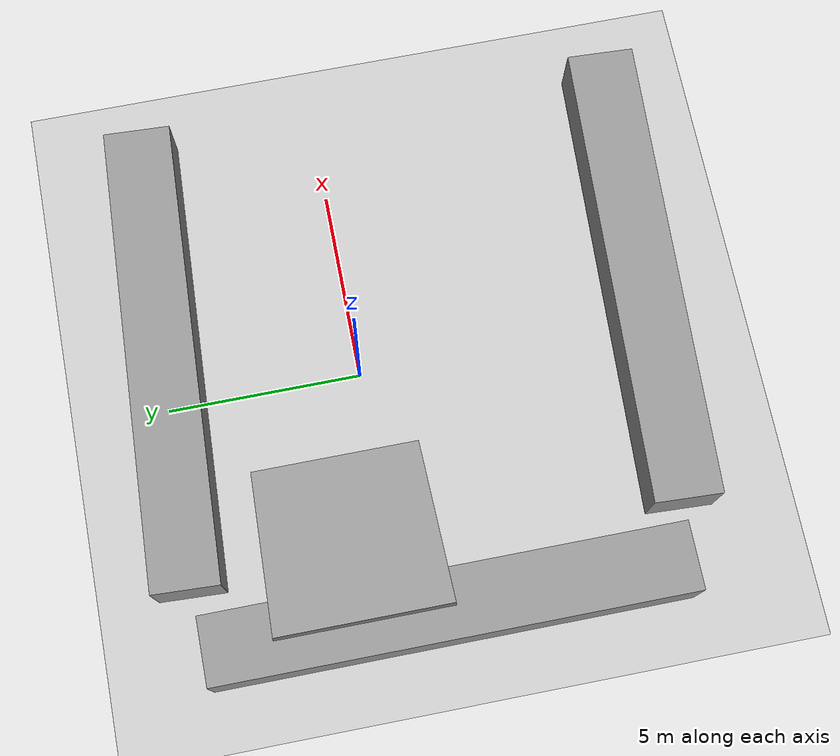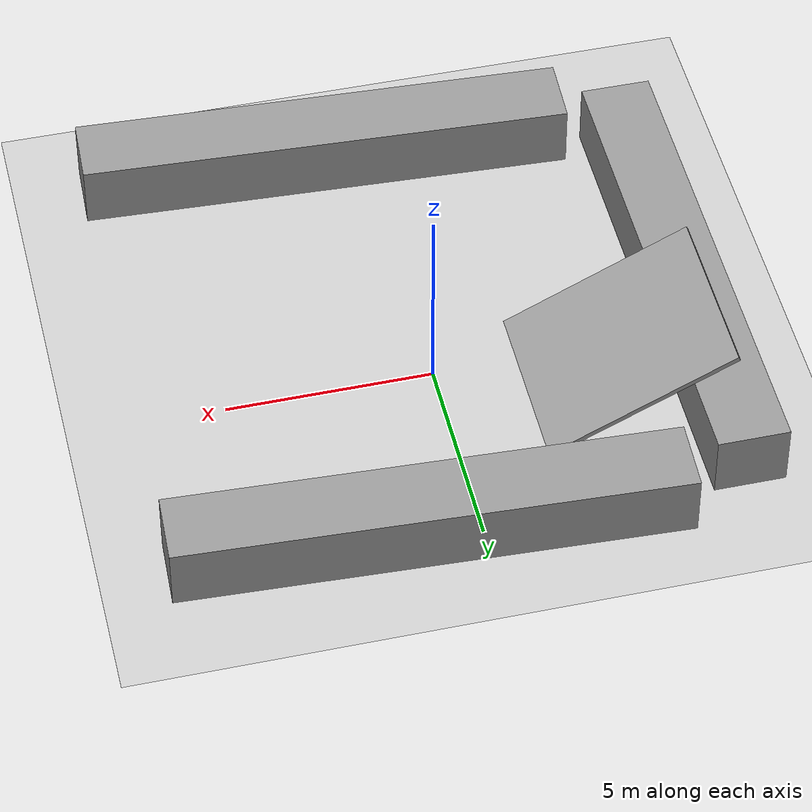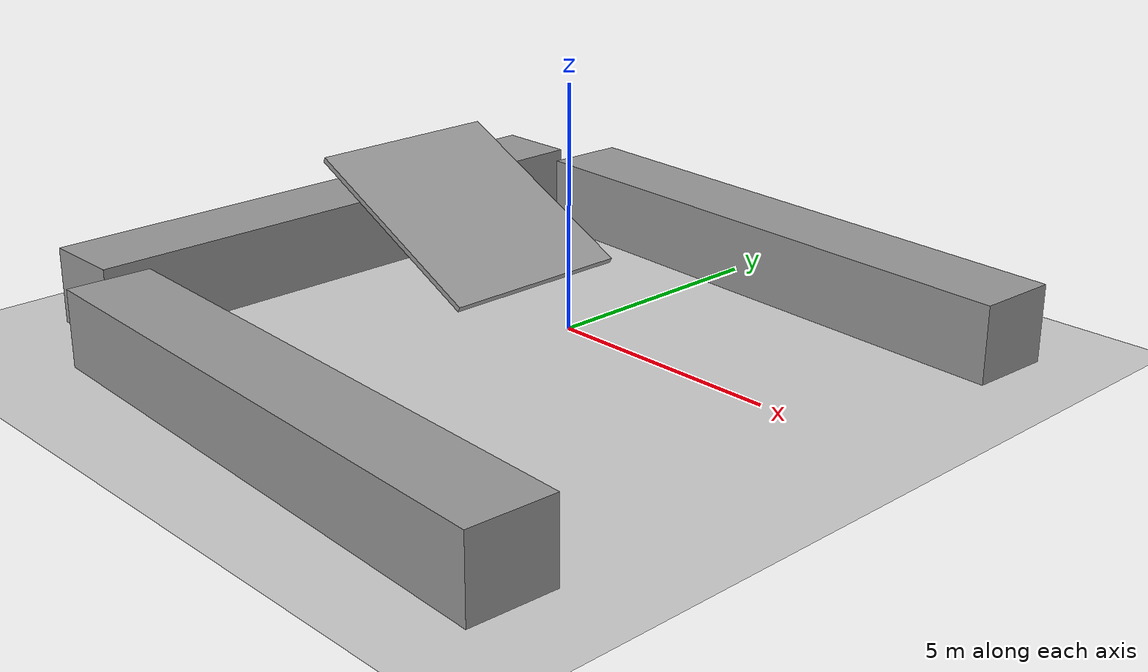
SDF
<sdf version="1.7">
 <world name="default">
  <light name="sun" type="directional">
   <pose>0 0 10 0 -0 0</pose>
   <diffuse>0.8 0.8 0.8 1</diffuse>
   <specular>0.2 0.2 0.2 1</specular>
   <attenuation>
    <range>1000</range>
    <constant>0.9</constant>
    <linear>0.01</linear>
    <quadratic>0.001</quadratic>
   </attenuation>
   <direction>-0.5 0.1 -0.9</direction>
   <spot><inner_angle>0</inner_angle><outer_angle>0</outer_angle><falloff>0</falloff></spot>
  </light>
  <model name="ground_plane">
   <static>1</static>
   <link name="link">
    <collision name="collision">
     <geometry><plane><normal>0 0 1</normal><size>100 100</size></plane></geometry>
     <surface>
      <contact><collide_bitmask>65535</collide_bitmask></contact>
      <friction><ode><mu>100</mu><mu2>50</mu2></ode></friction>
     </surface>
    </collision>
    <visual name="visual">
     <cast_shadows>0</cast_shadows>
     <geometry><plane><normal>0 0 1</normal><size>100 100</size></plane></geometry>
     <material>
      <script><uri>file://media/materials/scripts/gazebo.material</uri><name>Gazebo/Grey</name></script>
     </material>
    </visual>
   </link>
  </model>
  <gravity>0 0 -9.8</gravity>
  <magnetic_field>6e-06 2.3e-05 -4.2e-05</magnetic_field>
  <atmosphere type="adiabatic"/>
  <physics type="ode">
   <max_step_size>0.001</max_step_size>
   <real_time_factor>1</real_time_factor>
   <real_time_update_rate>1000</real_time_update_rate>
  </physics>
  <scene><ambient>0.4 0.4 0.4 1</ambient><background>0.7 0.7 0.7 1</background><shadows>1</shadows></scene>
  <spherical_coordinates>
   <surface_model>EARTH_WGS84</surface_model>
   <latitude_deg>0</latitude_deg>
   <longitude_deg>0</longitude_deg>
   <elevation>0</elevation>
   <heading_deg>0</heading_deg>
  </spherical_coordinates>
  <model name="rampworld">
   <link name="link_0">
    <inertial>
     <mass>3.57056e+06</mass>
     <inertia>
      <ixx>4.41918e+07</ixx>
      <ixy>0</ixy>
      <ixz>0</ixz>
      <iyy>1.76113e+06</iyy>
      <iyz>0</iyz>
      <izz>4.41966e+07</izz>
     </inertia>
    </inertial>
    <pose>-4.25988 -0.381079 -0.132793 0 -0 0</pose>
    <visual name="visual">
     <geometry><box><size>1.72264 12.0652 1.71795</size></box></geometry>
     <material>
      <lighting>1</lighting>
      <script><uri>file://media/materials/scripts/gazebo.material</uri><name>Gazebo/Grey</name></script>
      <shader type="pixel"><normal_map>__default__</normal_map></shader>
     </material>
    </visual>
    <collision name="collision">
     <geometry><box><size>1.72264 12.0652 1.71795</size></box></geometry>
     <surface>
      <friction>
       <ode><mu>1</mu><mu2>1</mu2><fdir1>0 0 0</fdir1><slip1>0</slip1><slip2>0</slip2></ode>
       <torsional>
        <coefficient>1</coefficient>
        <patch_radius>0</patch_radius>
        <surface_radius>0</surface_radius>
        <use_patch_radius>1</use_patch_radius>
        <ode><slip>0</slip></ode>
       </torsional>
      </friction>
      <bounce><restitution_coefficient>0</restitution_coefficient><threshold>1e+06</threshold></bounce>
      <contact>
       <collide_without_contact>0</collide_without_contact>
       <collide_without_contact_bitmask>1</collide_without_contact_bitmask>
       <collide_bitmask>1</collide_bitmask>
       <ode>
        <soft_cfm>0</soft_cfm>
        <soft_erp>0.2</soft_erp>
        <kp>1e+13</kp>
        <kd>1</kd>
        <max_vel>0.01</max_vel>
        <min_depth>0</min_depth>
       </ode>
       <bullet>
        <split_impulse>1</split_impulse>
        <split_impulse_penetration_threshold>-0.01</split_impulse_penetration_threshold>
        <soft_cfm>0</soft_cfm>
        <soft_erp>0.2</soft_erp>
        <kp>1e+13</kp>
        <kd>1</kd>
       </bullet>
      </contact>
     </surface>
    </collision>
   </link>
   <link name="link_0_clone">
    <inertial>
     <mass>3.57056e+06</mass>
     <inertia>
      <ixx>4.41918e+07</ixx>
      <ixy>0</ixy>
      <ixz>0</ixz>
      <iyy>1.76113e+06</iyy>
      <iyz>0</iyz>
      <izz>4.41966e+07</izz>
     </inertia>
    </inertial>
    <pose>3.28067 5.52391 -0.132793 0 0 -1.61714</pose>
    <visual name="visual">
     <geometry><box><size>1.72264 12.0652 1.71795</size></box></geometry>
     <material>
      <lighting>1</lighting>
      <script><uri>file://media/materials/scripts/gazebo.material</uri><name>Gazebo/Grey</name></script>
      <shader type="pixel"><normal_map>__default__</normal_map></shader>
     </material>
    </visual>
    <collision name="collision">
     <geometry><box><size>1.72264 12.0652 1.71795</size></box></geometry>
     <surface>
      <friction>
       <ode><mu>1</mu><mu2>1</mu2><fdir1>0 0 0</fdir1><slip1>0</slip1><slip2>0</slip2></ode>
       <torsional>
        <coefficient>1</coefficient>
        <patch_radius>0</patch_radius>
        <surface_radius>0</surface_radius>
        <use_patch_radius>1</use_patch_radius>
        <ode><slip>0</slip></ode>
       </torsional>
      </friction>
      <bounce><restitution_coefficient>0</restitution_coefficient><threshold>1e+06</threshold></bounce>
      <contact>
       <collide_without_contact>0</collide_without_contact>
       <collide_without_contact_bitmask>1</collide_without_contact_bitmask>
       <collide_bitmask>1</collide_bitmask>
       <ode>
        <soft_cfm>0</soft_cfm>
        <soft_erp>0.2</soft_erp>
        <kp>1e+13</kp>
        <kd>1</kd>
        <max_vel>0.01</max_vel>
        <min_depth>0</min_depth>
       </ode>
       <bullet>
        <split_impulse>1</split_impulse>
        <split_impulse_penetration_threshold>-0.01</split_impulse_penetration_threshold>
        <soft_cfm>0</soft_cfm>
        <soft_erp>0.2</soft_erp>
        <kp>1e+13</kp>
        <kd>1</kd>
       </bullet>
      </contact>
     </surface>
    </collision>
   </link>
   <link name="link_0_clone_clone">
    <inertial>
     <mass>3.57056e+06</mass>
     <inertia>
      <ixx>4.41918e+07</ixx>
      <ixy>0</ixy>
      <ixz>0</ixz>
      <iyy>1.76113e+06</iyy>
      <iyz>0</iyz>
      <izz>4.41966e+07</izz>
     </inertia>
    </inertial>
    <pose>3.14089 -6.85966 -0.132793 0 0 -1.61714</pose>
    <visual name="visual">
     <geometry><box><size>1.72264 12.0652 1.71795</size></box></geometry>
     <material>
      <lighting>1</lighting>
      <script><uri>file://media/materials/scripts/gazebo.material</uri><name>Gazebo/Grey</name></script>
      <shader type="pixel"><normal_map>__default__</normal_map></shader>
     </material>
    </visual>
    <collision name="collision">
     <geometry><box><size>1.72264 12.0652 1.71795</size></box></geometry>
     <surface>
      <friction>
       <ode><mu>1</mu><mu2>1</mu2><fdir1>0 0 0</fdir1><slip1>0</slip1><slip2>0</slip2></ode>
       <torsional>
        <coefficient>1</coefficient>
        <patch_radius>0</patch_radius>
        <surface_radius>0</surface_radius>
        <use_patch_radius>1</use_patch_radius>
        <ode><slip>0</slip></ode>
       </torsional>
      </friction>
      <bounce><restitution_coefficient>0</restitution_coefficient><threshold>1e+06</threshold></bounce>
      <contact>
       <collide_without_contact>0</collide_without_contact>
       <collide_without_contact_bitmask>1</collide_without_contact_bitmask>
       <collide_bitmask>1</collide_bitmask>
       <ode>
        <soft_cfm>0</soft_cfm>
        <soft_erp>0.2</soft_erp>
        <kp>1e+13</kp>
        <kd>1</kd>
        <max_vel>0.01</max_vel>
        <min_depth>0</min_depth>
       </ode>
       <bullet>
        <split_impulse>1</split_impulse>
        <split_impulse_penetration_threshold>-0.01</split_impulse_penetration_threshold>
        <soft_cfm>0</soft_cfm>
        <soft_erp>0.2</soft_erp>
        <kp>1e+13</kp>
        <kd>1</kd>
       </bullet>
      </contact>
     </surface>
    </collision>
   </link>
   <model name="0.9slpoe">
    <link name="link">
     <inertial>
      <mass>420328</mass>
      <inertia><ixx>662051</ixx><ixy>0</ixy><ixz>0</ixz><iyy>35616.5</iyy><iyz>0</iyz><izz>696489</izz></inertia>
     </inertial>
     <visual name="visual">
      <geometry><box><size>4.95209 4.34559 0.12</size></box></geometry>
      <material>
       <script><name>Gazebo/Grey</name><uri>file://media/materials/scripts/gazebo.material</uri></script>
       <shader type="pixel"><normal_map>__default__</normal_map></shader>
       <ambient>0.3 0.3 0.3 1</ambient>
       <diffuse>0.7 0.7 0.7 1</diffuse>
       <specular>0.01 0.01 0.01 1</specular>
       <emissive>0 0 0 1</emissive>
      </material>
     </visual>
     <collision name="collision">
      <geometry><box><size>4.95209 4.34559 0.12</size></box></geometry>
      <surface>
       <friction>
        <ode><mu>0.9</mu><mu2>0.9</mu2><fdir1>0 0 0</fdir1><slip1>0</slip1><slip2>0</slip2></ode>
        <torsional>
         <coefficient>1</coefficient>
         <patch_radius>0</patch_radius>
         <surface_radius>0</surface_radius>
         <use_patch_radius>1</use_patch_radius>
         <ode><slip>0</slip></ode>
        </torsional>
       </friction>
       <bounce><restitution_coefficient>0</restitution_coefficient><threshold>1e+06</threshold></bounce>
       <contact>
        <collide_without_contact>0</collide_without_contact>
        <collide_without_contact_bitmask>1</collide_without_contact_bitmask>
        <collide_bitmask>1</collide_bitmask>
        <ode>
         <soft_cfm>0</soft_cfm>
         <soft_erp>0.2</soft_erp>
         <kp>1e+13</kp>
         <kd>1</kd>
         <max_vel>0.01</max_vel>
         <min_depth>0</min_depth>
        </ode>
        <bullet>
         <split_impulse>1</split_impulse>
         <split_impulse_penetration_threshold>-0.01</split_impulse_penetration_threshold>
         <soft_cfm>0</soft_cfm>
         <soft_erp>0.2</soft_erp>
         <kp>1e+13</kp>
         <kd>1</kd>
        </bullet>
       </contact>
      </surface>
     </collision>
    </link>
    <static>0</static>
    <pose>-2.16168 1.71683 0.398383 0 0.461484 0</pose>
   </model>
   <static>0</static>
   <pose>-2.07714 -0.687685 0.826861 0 -0 0</pose>
  </model>
 </world>
</sdf>
